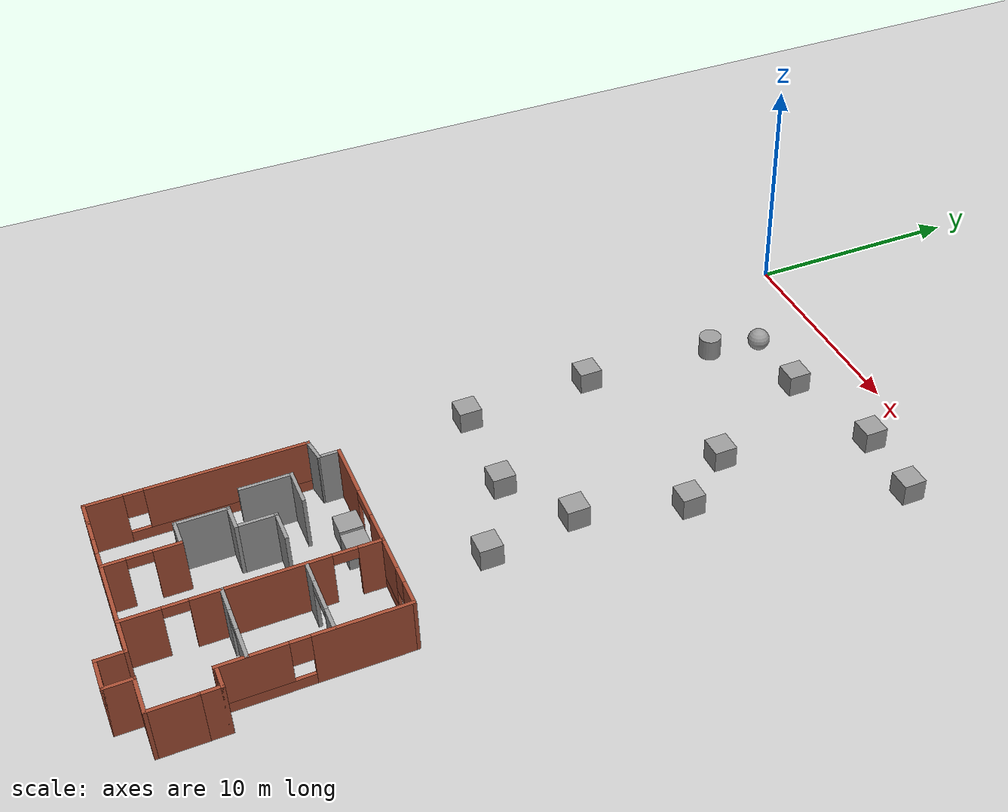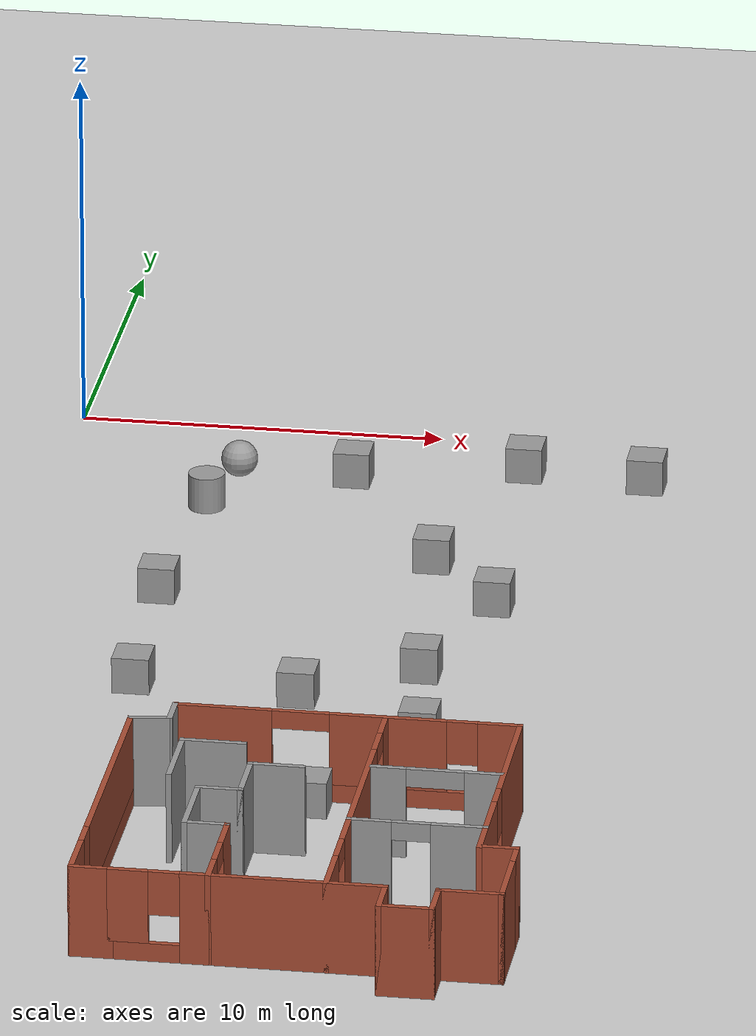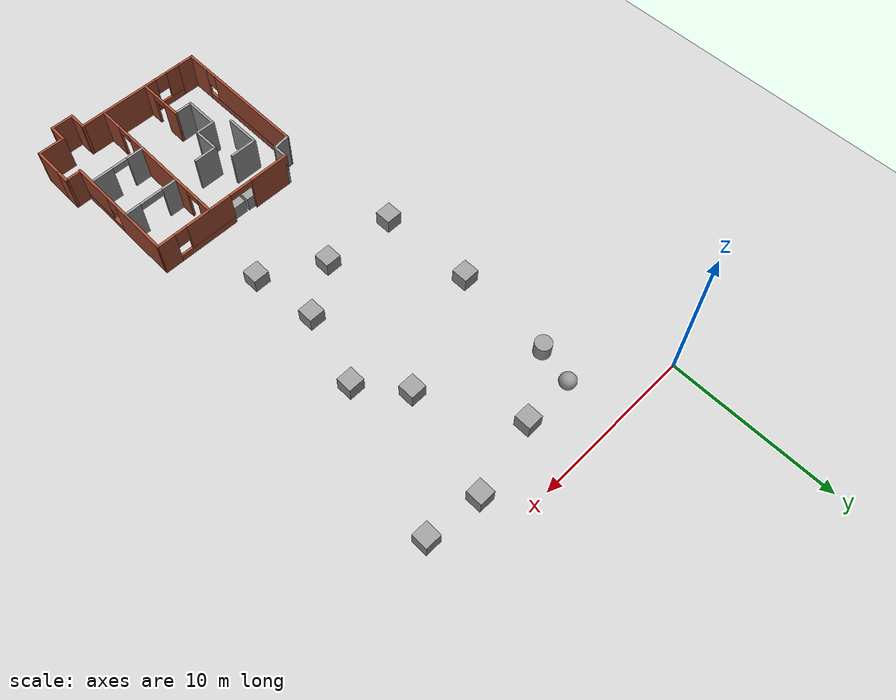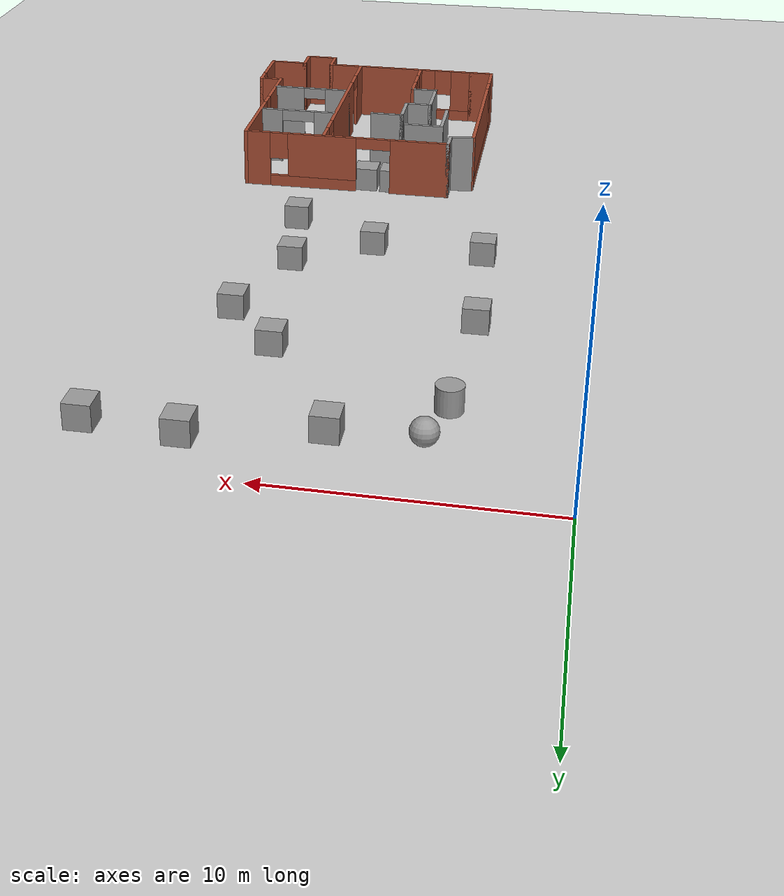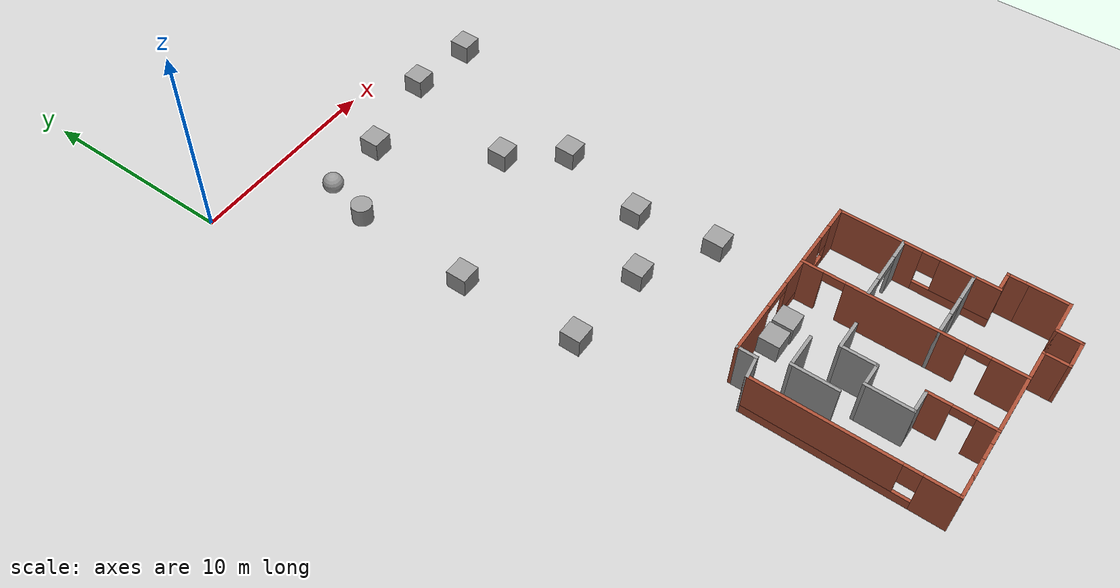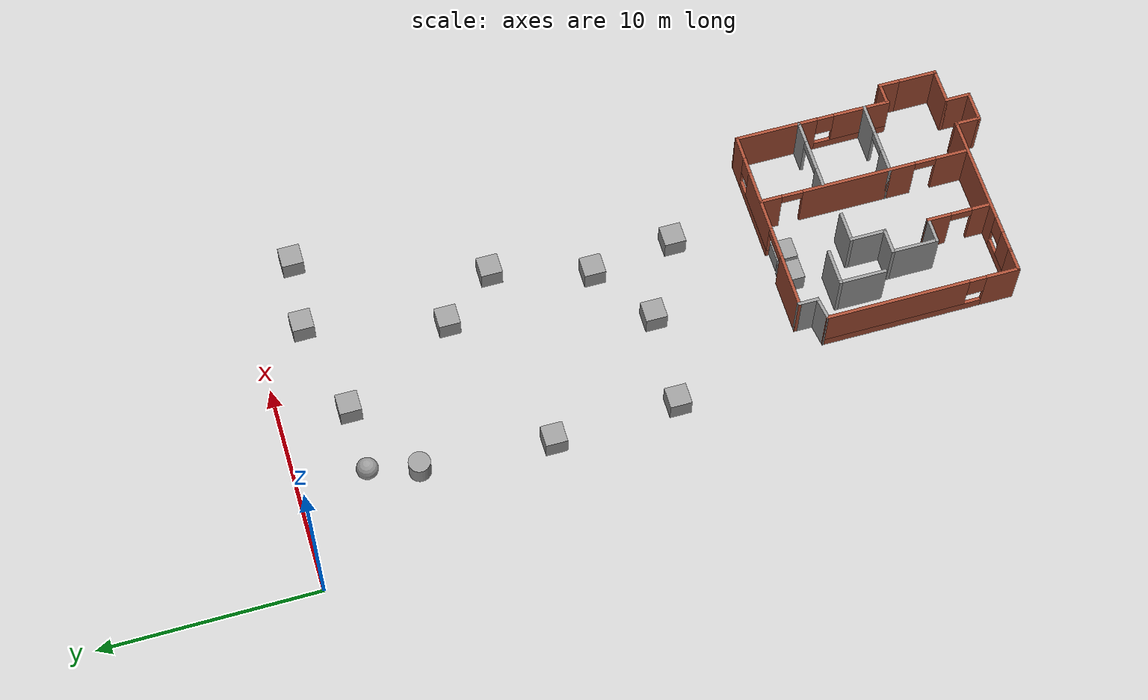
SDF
<sdf version="1.6">
 <world name="default">
  <model name="ground_plane">
   <static>1</static>
   <link name="link">
    <collision name="collision">
     <geometry><plane><normal>0 0 1</normal><size>100 100</size></plane></geometry>
     <surface><friction><ode><mu>100</mu><mu2>50</mu2></ode></friction></surface>
    </collision>
    <visual name="visual">
     <cast_shadows>0</cast_shadows>
     <geometry><plane><normal>0 0 1</normal><size>100 100</size></plane></geometry>
     <material>
      <script><uri>file://media/materials/scripts/gazebo.material</uri><name>Gazebo/Grey</name></script>
     </material>
    </visual>
   </link>
  </model>
  <model name="Multi_10home2_0">
   <pose>10.9036 -29.1028 0 0 -0 3.13963</pose>
   <link name="Wall_1">
    <pose>-0.030148 -5.55 0 0 -0 0</pose>
    <visual name="Wall_1_Visual_0">
     <pose>-3.9871 0 1.25 0 -0 0</pose>
     <geometry><box><size>1.1758 0.15 2.5</size></box></geometry>
     <material>
      <script><uri>file://media/materials/scripts/gazebo.material</uri><name>Gazebo/Bricks</name></script>
      <ambient>0.996078 0.47451 0.0196078 1</ambient>
     </material>
     <meta><layer>0</layer></meta>
    </visual>
    <collision name="Wall_1_Collision_0">
     <geometry><box><size>1.1758 0.15 2.5</size></box></geometry>
     <pose>-3.9871 0 1.25 0 -0 0</pose>
    </collision>
    <visual name="Wall_1_Visual_1">
     <pose>3.26904 0 1.25 0 -0 0</pose>
     <geometry><box><size>2.61193 0.15 2.5</size></box></geometry>
     <material>
      <script><uri>file://media/materials/scripts/gazebo.material</uri><name>Gazebo/Bricks</name></script>
      <ambient>0.996078 0.47451 0.0196078 1</ambient>
     </material>
     <meta><layer>0</layer></meta>
    </visual>
    <collision name="Wall_1_Collision_1">
     <geometry><box><size>2.61193 0.15 2.5</size></box></geometry>
     <pose>3.26904 0 1.25 0 -0 0</pose>
    </collision>
    <visual name="Wall_1_Visual_2">
     <pose>-1.46806 0 0.25 0 -0 0</pose>
     <geometry><box><size>3.86227 0.15 0.5</size></box></geometry>
     <material>
      <script><uri>file://media/materials/scripts/gazebo.material</uri><name>Gazebo/Bricks</name></script>
      <ambient>0.996078 0.47451 0.0196078 1</ambient>
     </material>
     <meta><layer>0</layer></meta>
    </visual>
    <collision name="Wall_1_Collision_2">
     <geometry><box><size>3.86227 0.15 0.5</size></box></geometry>
     <pose>-1.46806 0 0.25 0 -0 0</pose>
    </collision>
    <visual name="Wall_1_Visual_3">
     <pose>-1.06806 0 1.5 0 -0 0</pose>
     <geometry><box><size>3.06227 0.15 2</size></box></geometry>
     <material>
      <script><uri>file://media/materials/scripts/gazebo.material</uri><name>Gazebo/Bricks</name></script>
      <ambient>0.996078 0.47451 0.0196078 1</ambient>
     </material>
     <meta><layer>0</layer></meta>
    </visual>
    <collision name="Wall_1_Collision_3">
     <geometry><box><size>3.06227 0.15 2</size></box></geometry>
     <pose>-1.06806 0 1.5 0 -0 0</pose>
    </collision>
    <visual name="Wall_1_Visual_4">
     <pose>-2.9992 0 1.9 0 -0 0</pose>
     <geometry><box><size>0.8 0.15 1.2</size></box></geometry>
     <material>
      <script><uri>file://media/materials/scripts/gazebo.material</uri><name>Gazebo/Bricks</name></script>
      <ambient>0.996078 0.47451 0.0196078 1</ambient>
     </material>
     <meta><layer>0</layer></meta>
    </visual>
    <collision name="Wall_1_Collision_4">
     <geometry><box><size>0.8 0.15 1.2</size></box></geometry>
     <pose>-2.9992 0 1.9 0 -0 0</pose>
    </collision>
    <visual name="Wall_1_Visual_5">
     <pose>1.21307 0 2.25 0 -0 0</pose>
     <geometry><box><size>1.5 0.15 0.5</size></box></geometry>
     <material>
      <script><uri>file://media/materials/scripts/gazebo.material</uri><name>Gazebo/Bricks</name></script>
      <ambient>0.996078 0.47451 0.0196078 1</ambient>
     </material>
     <meta><layer>0</layer></meta>
    </visual>
    <collision name="Wall_1_Collision_5">
     <geometry><box><size>1.5 0.15 0.5</size></box></geometry>
     <pose>1.21307 0 2.25 0 -0 0</pose>
    </collision>
   </link>
   <link name="Wall_13">
    <collision name="Wall_13_Collision">
     <geometry><box><size>1.15 0.15 2.5</size></box></geometry>
     <pose>0 0 1.25 0 -0 0</pose>
    </collision>
    <visual name="Wall_13_Visual">
     <pose>0 0 1.25 0 -0 0</pose>
     <geometry><box><size>1.15 0.15 2.5</size></box></geometry>
     <material>
      <script><uri>file://media/materials/scripts/gazebo.material</uri><name>Gazebo/Bricks</name></script>
      <ambient>0.996078 0.47451 0.0196078 1</ambient>
     </material>
     <meta><layer>0</layer></meta>
    </visual>
    <pose>4.96985 4.45 0 0 -0 0</pose>
   </link>
   <link name="Wall_15">
    <pose>5.46985 -0.05 0 0 -0 -1.5708</pose>
    <visual name="Wall_15_Visual_0">
     <pose>-3.77551 0 1.25 0 -0 0</pose>
     <geometry><box><size>1.59899 0.15 2.5</size></box></geometry>
     <material>
      <script><uri>file://media/materials/scripts/gazebo.material</uri><name>Gazebo/Bricks</name></script>
      <ambient>0.996078 0.47451 0.0196078 1</ambient>
     </material>
     <meta><layer>0</layer></meta>
    </visual>
    <collision name="Wall_15_Collision_0">
     <geometry><box><size>1.59899 0.15 2.5</size></box></geometry>
     <pose>-3.77551 0 1.25 0 -0 0</pose>
    </collision>
    <visual name="Wall_15_Visual_1">
     <pose>0.799494 0 0.25 0 -0 0</pose>
     <geometry><box><size>7.55101 0.15 0.5</size></box></geometry>
     <material>
      <script><uri>file://media/materials/scripts/gazebo.material</uri><name>Gazebo/Bricks</name></script>
      <ambient>0.996078 0.47451 0.0196078 1</ambient>
     </material>
     <meta><layer>0</layer></meta>
    </visual>
    <collision name="Wall_15_Collision_1">
     <geometry><box><size>7.55101 0.15 0.5</size></box></geometry>
     <pose>0.799494 0 0.25 0 -0 0</pose>
    </collision>
    <visual name="Wall_15_Visual_2">
     <pose>1.19949 0 1.5 0 -0 0</pose>
     <geometry><box><size>6.75101 0.15 2</size></box></geometry>
     <material>
      <script><uri>file://media/materials/scripts/gazebo.material</uri><name>Gazebo/Bricks</name></script>
      <ambient>0.996078 0.47451 0.0196078 1</ambient>
     </material>
     <meta><layer>0</layer></meta>
    </visual>
    <collision name="Wall_15_Collision_2">
     <geometry><box><size>6.75101 0.15 2</size></box></geometry>
     <pose>1.19949 0 1.5 0 -0 0</pose>
    </collision>
    <visual name="Wall_15_Visual_3">
     <pose>-2.57601 0 1.9 0 -0 0</pose>
     <geometry><box><size>0.8 0.15 1.2</size></box></geometry>
     <material>
      <script><uri>file://media/materials/scripts/gazebo.material</uri><name>Gazebo/Bricks</name></script>
      <ambient>0.996078 0.47451 0.0196078 1</ambient>
     </material>
     <meta><layer>0</layer></meta>
    </visual>
    <collision name="Wall_15_Collision_3">
     <geometry><box><size>0.8 0.15 1.2</size></box></geometry>
     <pose>-2.57601 0 1.9 0 -0 0</pose>
    </collision>
   </link>
   <link name="Wall_17">
    <pose>-1.03015 -0.55 0 0 -0 -1.5708</pose>
    <visual name="Wall_17_Visual_0">
     <pose>-4.25111 0 1.25 0 -0 0</pose>
     <geometry><box><size>1.64778 0.15 2.5</size></box></geometry>
     <material>
      <script><uri>file://media/materials/scripts/gazebo.material</uri><name>Gazebo/Bricks</name></script>
      <ambient>1 0.764706 0.305882 1</ambient>
     </material>
     <meta><layer>0</layer></meta>
    </visual>
    <collision name="Wall_17_Collision_0">
     <geometry><box><size>1.64778 0.15 2.5</size></box></geometry>
     <pose>-4.25111 0 1.25 0 -0 0</pose>
    </collision>
    <visual name="Wall_17_Visual_1">
     <pose>0.285375 0 1.25 0 -0 0</pose>
     <geometry><box><size>5.42519 0.15 2.5</size></box></geometry>
     <material>
      <script><uri>file://media/materials/scripts/gazebo.material</uri><name>Gazebo/Bricks</name></script>
      <ambient>1 0.764706 0.305882 1</ambient>
     </material>
     <meta><layer>0</layer></meta>
    </visual>
    <collision name="Wall_17_Collision_1">
     <geometry><box><size>5.42519 0.15 2.5</size></box></geometry>
     <pose>0.285375 0 1.25 0 -0 0</pose>
    </collision>
    <visual name="Wall_17_Visual_2">
     <pose>4.53648 0 1.25 0 -0 0</pose>
     <geometry><box><size>1.07703 0.15 2.5</size></box></geometry>
     <material>
      <script><uri>file://media/materials/scripts/gazebo.material</uri><name>Gazebo/Bricks</name></script>
      <ambient>1 0.764706 0.305882 1</ambient>
     </material>
     <meta><layer>0</layer></meta>
    </visual>
    <collision name="Wall_17_Collision_2">
     <geometry><box><size>1.07703 0.15 2.5</size></box></geometry>
     <pose>4.53648 0 1.25 0 -0 0</pose>
    </collision>
    <visual name="Wall_17_Visual_3">
     <pose>-2.92722 0 2.25 0 -0 0</pose>
     <geometry><box><size>1 0.15 0.5</size></box></geometry>
     <material>
      <script><uri>file://media/materials/scripts/gazebo.material</uri><name>Gazebo/Bricks</name></script>
      <ambient>1 0.764706 0.305882 1</ambient>
     </material>
     <meta><layer>0</layer></meta>
    </visual>
    <collision name="Wall_17_Collision_3">
     <geometry><box><size>1 0.15 0.5</size></box></geometry>
     <pose>-2.92722 0 2.25 0 -0 0</pose>
    </collision>
    <visual name="Wall_17_Visual_4">
     <pose>3.49797 0 2.25 0 -0 0</pose>
     <geometry><box><size>1 0.15 0.5</size></box></geometry>
     <material>
      <script><uri>file://media/materials/scripts/gazebo.material</uri><name>Gazebo/Bricks</name></script>
      <ambient>1 0.764706 0.305882 1</ambient>
     </material>
     <meta><layer>0</layer></meta>
    </visual>
    <collision name="Wall_17_Collision_4">
     <geometry><box><size>1 0.15 0.5</size></box></geometry>
     <pose>3.49797 0 2.25 0 -0 0</pose>
    </collision>
   </link>
   <link name="Wall_21">
    <pose>1.96985 2.95 0 0 -0 -1.5708</pose>
    <visual name="Wall_21_Visual_0">
     <pose>-1.07884 0 1.25 0 -0 0</pose>
     <geometry><box><size>0.992321 0.15 2.5</size></box></geometry>
     <material>
      <script><uri>file://media/materials/scripts/gazebo.material</uri><name>Gazebo/Bricks</name></script>
      <ambient>1 0.764706 0.305882 1</ambient>
     </material>
     <meta><layer>0</layer></meta>
    </visual>
    <collision name="Wall_21_Collision_0">
     <geometry><box><size>0.992321 0.15 2.5</size></box></geometry>
     <pose>-1.07884 0 1.25 0 -0 0</pose>
    </collision>
    <visual name="Wall_21_Visual_1">
     <pose>0.99616 0 1.25 0 -0 0</pose>
     <geometry><box><size>1.15768 0.15 2.5</size></box></geometry>
     <material>
      <script><uri>file://media/materials/scripts/gazebo.material</uri><name>Gazebo/Bricks</name></script>
      <ambient>1 0.764706 0.305882 1</ambient>
     </material>
     <meta><layer>0</layer></meta>
    </visual>
    <collision name="Wall_21_Collision_1">
     <geometry><box><size>1.15768 0.15 2.5</size></box></geometry>
     <pose>0.99616 0 1.25 0 -0 0</pose>
    </collision>
    <visual name="Wall_21_Visual_2">
     <pose>-0.082679 0 2.25 0 -0 0</pose>
     <geometry><box><size>1 0.15 0.5</size></box></geometry>
     <material>
      <script><uri>file://media/materials/scripts/gazebo.material</uri><name>Gazebo/Bricks</name></script>
      <ambient>1 0.764706 0.305882 1</ambient>
     </material>
     <meta><layer>0</layer></meta>
    </visual>
    <collision name="Wall_21_Collision_2">
     <geometry><box><size>1 0.15 0.5</size></box></geometry>
     <pose>-0.082679 0 2.25 0 -0 0</pose>
    </collision>
   </link>
   <link name="Wall_23">
    <pose>-2.78015 0.65 0 0 -0 0</pose>
    <visual name="Wall_23_Visual_0">
     <pose>-1.08466 0 1.25 0 -0 0</pose>
     <geometry><box><size>1.48067 0.15 2.5</size></box></geometry>
     <material>
      <script><uri>file://media/materials/scripts/gazebo.material</uri><name>Gazebo/Grey</name></script>
      <ambient>1 1 1 1</ambient>
     </material>
     <meta><layer>0</layer></meta>
    </visual>
    <collision name="Wall_23_Collision_0">
     <geometry><box><size>1.48067 0.15 2.5</size></box></geometry>
     <pose>-1.08466 0 1.25 0 -0 0</pose>
    </collision>
    <visual name="Wall_23_Visual_1">
     <pose>1.24034 0 1.25 0 -0 0</pose>
     <geometry><box><size>1.16933 0.15 2.5</size></box></geometry>
     <material>
      <script><uri>file://media/materials/scripts/gazebo.material</uri><name>Gazebo/Grey</name></script>
      <ambient>1 1 1 1</ambient>
     </material>
     <meta><layer>0</layer></meta>
    </visual>
    <collision name="Wall_23_Collision_1">
     <geometry><box><size>1.16933 0.15 2.5</size></box></geometry>
     <pose>1.24034 0 1.25 0 -0 0</pose>
    </collision>
    <visual name="Wall_23_Visual_2">
     <pose>0.155673 0 2.25 0 -0 0</pose>
     <geometry><box><size>1 0.15 0.5</size></box></geometry>
     <material>
      <script><uri>file://media/materials/scripts/gazebo.material</uri><name>Gazebo/Grey</name></script>
      <ambient>1 1 1 1</ambient>
     </material>
     <meta><layer>0</layer></meta>
    </visual>
    <collision name="Wall_23_Collision_2">
     <geometry><box><size>1 0.15 0.5</size></box></geometry>
     <pose>0.155673 0 2.25 0 -0 0</pose>
    </collision>
   </link>
   <link name="Wall_25">
    <pose>-2.81697 -2.5468 0 0 -0 0</pose>
    <visual name="Wall_25_Visual_0">
     <pose>-1.22693 0 1.25 0 -0 0</pose>
     <geometry><box><size>1.04615 0.15 2.5</size></box></geometry>
     <material>
      <script><uri>file://media/materials/scripts/gazebo.material</uri><name>Gazebo/Grey</name></script>
      <ambient>1 1 1 1</ambient>
     </material>
     <meta><layer>0</layer></meta>
    </visual>
    <collision name="Wall_25_Collision_0">
     <geometry><box><size>1.04615 0.15 2.5</size></box></geometry>
     <pose>-1.22693 0 1.25 0 -0 0</pose>
    </collision>
    <visual name="Wall_25_Visual_1">
     <pose>1.27307 0 1.25 0 -0 0</pose>
     <geometry><box><size>0.953852 0.15 2.5</size></box></geometry>
     <material>
      <script><uri>file://media/materials/scripts/gazebo.material</uri><name>Gazebo/Grey</name></script>
      <ambient>1 1 1 1</ambient>
     </material>
     <meta><layer>0</layer></meta>
    </visual>
    <collision name="Wall_25_Collision_1">
     <geometry><box><size>0.953852 0.15 2.5</size></box></geometry>
     <pose>1.27307 0 1.25 0 -0 0</pose>
    </collision>
    <visual name="Wall_25_Visual_2">
     <pose>0.046148 0 2.25 0 -0 0</pose>
     <geometry><box><size>1.5 0.15 0.5</size></box></geometry>
     <material>
      <script><uri>file://media/materials/scripts/gazebo.material</uri><name>Gazebo/Grey</name></script>
      <ambient>1 1 1 1</ambient>
     </material>
     <meta><layer>0</layer></meta>
    </visual>
    <collision name="Wall_25_Collision_2">
     <geometry><box><size>1.5 0.15 0.5</size></box></geometry>
     <pose>0.046148 0 2.25 0 -0 0</pose>
    </collision>
   </link>
   <link name="Wall_27">
    <collision name="Wall_27_Collision">
     <geometry><box><size>1.25 0.15 2.5</size></box></geometry>
     <pose>0 0 1.25 0 -0 0</pose>
    </collision>
    <visual name="Wall_27_Visual">
     <pose>0 0 1.25 0 -0 0</pose>
     <geometry><box><size>1.25 0.15 2.5</size></box></geometry>
     <material>
      <script><uri>file://media/materials/scripts/gazebo.material</uri><name>Gazebo/Bricks</name></script>
      <ambient>0.996078 0.47451 0.0196078 1</ambient>
     </material>
     <meta><layer>0</layer></meta>
    </visual>
    <pose>-2.53015 5 0 0 -0 1.5708</pose>
   </link>
   <link name="Wall_28">
    <collision name="Wall_28_Collision">
     <geometry><box><size>1.5 0.15 2.5</size></box></geometry>
     <pose>0 0 1.25 0 -0 0</pose>
    </collision>
    <visual name="Wall_28_Visual">
     <pose>0 0 1.25 0 -0 0</pose>
     <geometry><box><size>1.5 0.15 2.5</size></box></geometry>
     <material>
      <script><uri>file://media/materials/scripts/gazebo.material</uri><name>Gazebo/Bricks</name></script>
      <ambient>0.996078 0.47451 0.0196078 1</ambient>
     </material>
     <meta><layer>0</layer></meta>
    </visual>
    <pose>-3.20515 5.55 0 0 -0 3.14159</pose>
   </link>
   <link name="Wall_29">
    <collision name="Wall_29_Collision">
     <geometry><box><size>1.25 0.15 2.5</size></box></geometry>
     <pose>0 0 1.25 0 -0 0</pose>
    </collision>
    <visual name="Wall_29_Visual">
     <pose>0 0 1.25 0 -0 0</pose>
     <geometry><box><size>1.25 0.15 2.5</size></box></geometry>
     <material>
      <script><uri>file://media/materials/scripts/gazebo.material</uri><name>Gazebo/Bricks</name></script>
      <ambient>0.996078 0.47451 0.0196078 1</ambient>
     </material>
     <meta><layer>0</layer></meta>
    </visual>
    <pose>-3.88015 5 0 0 -0 -1.5708</pose>
   </link>
   <link name="Wall_3">
    <pose>-4.53015 -1.875 0 0 -0 1.5708</pose>
    <visual name="Wall_3_Visual_0">
     <pose>-1.77393 0 1.25 0 -0 0</pose>
     <geometry><box><size>3.95214 0.15 2.5</size></box></geometry>
     <material>
      <script><uri>file://media/materials/scripts/gazebo.material</uri><name>Gazebo/Bricks</name></script>
      <ambient>0.996078 0.47451 0.0196078 1</ambient>
     </material>
     <meta><layer>0</layer></meta>
    </visual>
    <collision name="Wall_3_Collision_0">
     <geometry><box><size>3.95214 0.15 2.5</size></box></geometry>
     <pose>-1.77393 0 1.25 0 -0 0</pose>
    </collision>
    <visual name="Wall_3_Visual_1">
     <pose>1.97607 0 0.25 0 -0 0</pose>
     <geometry><box><size>3.54786 0.15 0.5</size></box></geometry>
     <material>
      <script><uri>file://media/materials/scripts/gazebo.material</uri><name>Gazebo/Bricks</name></script>
      <ambient>0.996078 0.47451 0.0196078 1</ambient>
     </material>
     <meta><layer>0</layer></meta>
    </visual>
    <collision name="Wall_3_Collision_1">
     <geometry><box><size>3.54786 0.15 0.5</size></box></geometry>
     <pose>1.97607 0 0.25 0 -0 0</pose>
    </collision>
    <visual name="Wall_3_Visual_2">
     <pose>2.37607 0 1.5 0 -0 0</pose>
     <geometry><box><size>2.74786 0.15 2</size></box></geometry>
     <material>
      <script><uri>file://media/materials/scripts/gazebo.material</uri><name>Gazebo/Bricks</name></script>
      <ambient>0.996078 0.47451 0.0196078 1</ambient>
     </material>
     <meta><layer>0</layer></meta>
    </visual>
    <collision name="Wall_3_Collision_2">
     <geometry><box><size>2.74786 0.15 2</size></box></geometry>
     <pose>2.37607 0 1.5 0 -0 0</pose>
    </collision>
    <visual name="Wall_3_Visual_3">
     <pose>0.602144 0 1.9 0 -0 0</pose>
     <geometry><box><size>0.8 0.15 1.2</size></box></geometry>
     <material>
      <script><uri>file://media/materials/scripts/gazebo.material</uri><name>Gazebo/Bricks</name></script>
      <ambient>0.996078 0.47451 0.0196078 1</ambient>
     </material>
     <meta><layer>0</layer></meta>
    </visual>
    <collision name="Wall_3_Collision_3">
     <geometry><box><size>0.8 0.15 1.2</size></box></geometry>
     <pose>0.602144 0 1.9 0 -0 0</pose>
    </collision>
   </link>
   <link name="Wall_30">
    <collision name="Wall_30_Collision">
     <geometry><box><size>1.75 0.15 2.5</size></box></geometry>
     <pose>0 0 1.25 0 -0 0</pose>
    </collision>
    <visual name="Wall_30_Visual">
     <pose>0 0 1.25 0 -0 0</pose>
     <geometry><box><size>1.75 0.15 2.5</size></box></geometry>
     <material>
      <script><uri>file://media/materials/scripts/gazebo.material</uri><name>Gazebo/Bricks</name></script>
      <ambient>0.996078 0.47451 0.0196078 1</ambient>
     </material>
     <meta><layer>0</layer></meta>
    </visual>
    <pose>-4.68015 4.45 0 0 -0 3.14159</pose>
   </link>
   <link name="Wall_31">
    <collision name="Wall_31_Collision">
     <geometry><box><size>2 0.15 2.5</size></box></geometry>
     <pose>0 0 1.25 0 -0 0</pose>
    </collision>
    <visual name="Wall_31_Visual">
     <pose>0 0 1.25 0 -0 0</pose>
     <geometry><box><size>2 0.15 2.5</size></box></geometry>
     <material>
      <script><uri>file://media/materials/scripts/gazebo.material</uri><name>Gazebo/Bricks</name></script>
      <ambient>0.996078 0.47451 0.0196078 1</ambient>
     </material>
     <meta><layer>0</layer></meta>
    </visual>
    <pose>-5.48015 3.525 0 0 -0 -1.5708</pose>
   </link>
   <link name="Wall_32">
    <collision name="Wall_32_Collision">
     <geometry><box><size>1 0.15 2.5</size></box></geometry>
     <pose>0 0 1.25 0 -0 0</pose>
    </collision>
    <visual name="Wall_32_Visual">
     <pose>0 0 1.25 0 -0 0</pose>
     <geometry><box><size>1 0.15 2.5</size></box></geometry>
     <material>
      <script><uri>file://media/materials/scripts/gazebo.material</uri><name>Gazebo/Bricks</name></script>
      <ambient>0.996078 0.47451 0.0196078 1</ambient>
     </material>
     <meta><layer>0</layer></meta>
    </visual>
    <pose>-5.48015 2.175 0 0 -0 -1.5708</pose>
   </link>
   <link name="Wall_33">
    <collision name="Wall_33_Collision">
     <geometry><box><size>1 0.15 2.5</size></box></geometry>
     <pose>0 0 1.25 0 -0 0</pose>
    </collision>
    <visual name="Wall_33_Visual">
     <pose>0 0 1.25 0 -0 0</pose>
     <geometry><box><size>1 0.15 2.5</size></box></geometry>
     <material>
      <script><uri>file://media/materials/scripts/gazebo.material</uri><name>Gazebo/Bricks</name></script>
      <ambient>0.996078 0.47451 0.0196078 1</ambient>
     </material>
     <meta><layer>0</layer></meta>
    </visual>
    <pose>-5.05515 1.75 0 0 -0 0</pose>
   </link>
   <link name="Wall_35">
    <collision name="Wall_35_Collision">
     <geometry><box><size>1.25 0.15 2.5</size></box></geometry>
     <pose>0 0 1.25 0 -0 0</pose>
    </collision>
    <visual name="Wall_35_Visual">
     <pose>0 0 1.25 0 -0 0</pose>
     <geometry><box><size>1.25 0.15 2.5</size></box></geometry>
     <material>
      <script><uri>file://media/materials/scripts/gazebo.material</uri><name>Gazebo/Grey</name></script>
      <ambient>1 1 1 1</ambient>
     </material>
     <meta><layer>0</layer></meta>
    </visual>
    <pose>2.51985 1.45 0 0 -0 0</pose>
   </link>
   <link name="Wall_36">
    <collision name="Wall_36_Collision">
     <geometry><box><size>2.25 0.15 2.5</size></box></geometry>
     <pose>0 0 1.25 0 -0 0</pose>
    </collision>
    <visual name="Wall_36_Visual">
     <pose>0 0 1.25 0 -0 0</pose>
     <geometry><box><size>2.25 0.15 2.5</size></box></geometry>
     <material>
      <script><uri>file://media/materials/scripts/gazebo.material</uri><name>Gazebo/Grey</name></script>
      <ambient>1 1 1 1</ambient>
     </material>
     <meta><layer>0</layer></meta>
    </visual>
    <pose>3.06985 0.4 0 0 -0 -1.5708</pose>
   </link>
   <link name="Wall_37">
    <collision name="Wall_37_Collision">
     <geometry><box><size>1.25 0.15 2.5</size></box></geometry>
     <pose>0 0 1.25 0 -0 0</pose>
    </collision>
    <visual name="Wall_37_Visual">
     <pose>0 0 1.25 0 -0 0</pose>
     <geometry><box><size>1.25 0.15 2.5</size></box></geometry>
     <material>
      <script><uri>file://media/materials/scripts/gazebo.material</uri><name>Gazebo/Grey</name></script>
      <ambient>1 1 1 1</ambient>
     </material>
     <meta><layer>0</layer></meta>
    </visual>
    <pose>2.51985 -0.65 0 0 -0 3.14159</pose>
   </link>
   <link name="Wall_38">
    <collision name="Wall_38_Collision">
     <geometry><box><size>1.75 0.15 2.5</size></box></geometry>
     <pose>0 0 1.25 0 -0 0</pose>
    </collision>
    <visual name="Wall_38_Visual">
     <pose>0 0 1.25 0 -0 0</pose>
     <geometry><box><size>1.75 0.15 2.5</size></box></geometry>
     <material>
      <script><uri>file://media/materials/scripts/gazebo.material</uri><name>Gazebo/Grey</name></script>
      <ambient>1 1 1 1</ambient>
     </material>
     <meta><layer>0</layer></meta>
    </visual>
    <pose>1.96985 -1.45 0 0 -0 -1.5708</pose>
   </link>
   <link name="Wall_39">
    <collision name="Wall_39_Collision">
     <geometry><box><size>1.5 0.15 2.5</size></box></geometry>
     <pose>0 0 1.25 0 -0 0</pose>
    </collision>
    <visual name="Wall_39_Visual">
     <pose>0 0 1.25 0 -0 0</pose>
     <geometry><box><size>1.5 0.15 2.5</size></box></geometry>
     <material>
      <script><uri>file://media/materials/scripts/gazebo.material</uri><name>Gazebo/Grey</name></script>
      <ambient>1 1 1 1</ambient>
     </material>
     <meta><layer>0</layer></meta>
    </visual>
    <pose>1.29485 -2.25 0 0 -0 3.14159</pose>
   </link>
   <link name="Wall_41">
    <collision name="Wall_41_Collision">
     <geometry><box><size>2.25 0.15 2.5</size></box></geometry>
     <pose>0 0 1.25 0 -0 0</pose>
    </collision>
    <visual name="Wall_41_Visual">
     <pose>0 0 1.25 0 -0 0</pose>
     <geometry><box><size>2.25 0.15 2.5</size></box></geometry>
     <material>
      <script><uri>file://media/materials/scripts/gazebo.material</uri><name>Gazebo/Grey</name></script>
      <ambient>1 1 1 1</ambient>
     </material>
     <meta><layer>0</layer></meta>
    </visual>
    <pose>3.92844 -2.37544 0 0 -0 -1.5708</pose>
   </link>
   <link name="Wall_42">
    <collision name="Wall_42_Collision">
     <geometry><box><size>1.75 0.15 2.5</size></box></geometry>
     <pose>0 0 1.25 0 -0 0</pose>
    </collision>
    <visual name="Wall_42_Visual">
     <pose>0 0 1.25 0 -0 0</pose>
     <geometry><box><size>1.75 0.15 2.5</size></box></geometry>
     <material>
      <script><uri>file://media/materials/scripts/gazebo.material</uri><name>Gazebo/Grey</name></script>
      <ambient>1 1 1 1</ambient>
     </material>
     <meta><layer>0</layer></meta>
    </visual>
    <pose>3.12844 -3.42544 0 0 -0 3.14159</pose>
   </link>
   <link name="Wall_45">
    <collision name="Wall_45_Collision">
     <geometry><box><size>1 0.15 2.5</size></box></geometry>
     <pose>0 0 1.25 0 -0 0</pose>
    </collision>
    <visual name="Wall_45_Visual">
     <pose>0 0 1.25 0 -0 0</pose>
     <geometry><box><size>1 0.15 2.5</size></box></geometry>
     <material>
      <script><uri>file://media/materials/scripts/gazebo.material</uri><name>Gazebo/Grey</name></script>
      <ambient>1 1 1 1</ambient>
     </material>
     <meta><layer>0</layer></meta>
    </visual>
    <pose>4.46985 -5.125 0 0 -0 1.5708</pose>
   </link>
   <link name="Wall_47">
    <collision name="Wall_47_Collision">
     <geometry><box><size>1.16119 0.15 2.5</size></box></geometry>
     <pose>0 0 1.25 0 -0 0</pose>
    </collision>
    <visual name="Wall_47_Visual">
     <pose>0 0 1.25 0 -0 0</pose>
     <geometry><box><size>1.16119 0.15 2.5</size></box></geometry>
     <material>
      <script><uri>file://media/materials/scripts/gazebo.material</uri><name>Gazebo/Grey</name></script>
      <ambient>1 1 1 1</ambient>
     </material>
     <meta><layer>0</layer></meta>
    </visual>
    <pose>4.96985 -4.625 0 0 -0 -2.9927</pose>
   </link>
   <link name="Wall_9">
    <pose>0.969852 4.45 0 0 -0 0</pose>
    <visual name="Wall_9_Visual_0">
     <pose>-0.925142 0 1.25 0 -0 0</pose>
     <geometry><box><size>5.29972 0.15 2.5</size></box></geometry>
     <material>
      <script><uri>file://media/materials/scripts/gazebo.material</uri><name>Gazebo/Bricks</name></script>
      <ambient>0.996078 0.47451 0.0196078 1</ambient>
     </material>
     <meta><layer>0</layer></meta>
    </visual>
    <collision name="Wall_9_Collision_0">
     <geometry><box><size>5.29972 0.15 2.5</size></box></geometry>
     <pose>-0.925142 0 1.25 0 -0 0</pose>
    </collision>
    <visual name="Wall_9_Visual_1">
     <pose>2.64986 0 0.25 0 -0 0</pose>
     <geometry><box><size>1.85028 0.15 0.5</size></box></geometry>
     <material>
      <script><uri>file://media/materials/scripts/gazebo.material</uri><name>Gazebo/Bricks</name></script>
      <ambient>0.996078 0.47451 0.0196078 1</ambient>
     </material>
     <meta><layer>0</layer></meta>
    </visual>
    <collision name="Wall_9_Collision_1">
     <geometry><box><size>1.85028 0.15 0.5</size></box></geometry>
     <pose>2.64986 0 0.25 0 -0 0</pose>
    </collision>
    <visual name="Wall_9_Visual_2">
     <pose>3.04986 0 1.5 0 -0 0</pose>
     <geometry><box><size>1.05028 0.15 2</size></box></geometry>
     <material>
      <script><uri>file://media/materials/scripts/gazebo.material</uri><name>Gazebo/Bricks</name></script>
      <ambient>0.996078 0.47451 0.0196078 1</ambient>
     </material>
     <meta><layer>0</layer></meta>
    </visual>
    <collision name="Wall_9_Collision_2">
     <geometry><box><size>1.05028 0.15 2</size></box></geometry>
     <pose>3.04986 0 1.5 0 -0 0</pose>
    </collision>
    <visual name="Wall_9_Visual_3">
     <pose>2.12472 0 1.9 0 -0 0</pose>
     <geometry><box><size>0.8 0.15 1.2</size></box></geometry>
     <material>
      <script><uri>file://media/materials/scripts/gazebo.material</uri><name>Gazebo/Bricks</name></script>
      <ambient>0.996078 0.47451 0.0196078 1</ambient>
     </material>
     <meta><layer>0</layer></meta>
    </visual>
    <collision name="Wall_9_Collision_3">
     <geometry><box><size>0.8 0.15 1.2</size></box></geometry>
     <pose>2.12472 0 1.9 0 -0 0</pose>
    </collision>
   </link>
   <static>1</static>
  </model>
  <model name="unit_cylinder">
   <pose>4.32247 -5.43382 0.499994 -4e-06 -3e-06 -0</pose>
   <link name="link">
    <inertial>
     <mass>1</mass>
     <inertia><ixx>0.145833</ixx><ixy>0</ixy><ixz>0</ixz><iyy>0.145833</iyy><iyz>0</iyz><izz>0.125</izz></inertia>
    </inertial>
    <collision name="collision">
     <geometry><cylinder><radius>0.5</radius><length>1</length></cylinder></geometry>
    </collision>
    <visual name="visual">
     <geometry><cylinder><radius>0.5</radius><length>1</length></cylinder></geometry>
     <material>
      <script><name>Gazebo/Grey</name><uri>file://media/materials/scripts/gazebo.material</uri></script>
     </material>
    </visual>
   </link>
  </model>
  <model name="unit_box_0">
   <pose>12.6196 -2.11449 0.499995 1e-05 -0 0</pose>
   <link name="link">
    <inertial>
     <mass>1</mass>
     <inertia>
      <ixx>0.166667</ixx>
      <ixy>0</ixy>
      <ixz>0</ixz>
      <iyy>0.166667</iyy>
      <iyz>0</iyz>
      <izz>0.166667</izz>
     </inertia>
    </inertial>
    <collision name="collision"><geometry><box><size>1 1 1</size></box></geometry></collision>
    <visual name="visual">
     <geometry><box><size>1 1 1</size></box></geometry>
     <material>
      <script><name>Gazebo/Grey</name><uri>file://media/materials/scripts/gazebo.material</uri></script>
     </material>
    </visual>
   </link>
  </model>
  <model name="unit_box_11">
   <pose>11 -8.48179 0.499995 1e-05 -0 -5e-06</pose>
   <link name="link">
    <inertial>
     <mass>1</mass>
     <inertia>
      <ixx>0.166667</ixx>
      <ixy>0</ixy>
      <ixz>0</ixz>
      <iyy>0.166667</iyy>
      <iyz>0</iyz>
      <izz>0.166667</izz>
     </inertia>
    </inertial>
    <collision name="collision"><geometry><box><size>1 1 1</size></box></geometry></collision>
    <visual name="visual">
     <geometry><box><size>1 1 1</size></box></geometry>
     <material>
      <script><name>Gazebo/Grey</name><uri>file://media/materials/scripts/gazebo.material</uri></script>
     </material>
    </visual>
   </link>
  </model>
  <model name="unit_box_12">
   <pose>4 -11.467 0.499995 0 1e-05 5e-06</pose>
   <link name="link">
    <inertial>
     <mass>1</mass>
     <inertia>
      <ixx>0.166667</ixx>
      <ixy>0</ixy>
      <ixz>0</ixz>
      <iyy>0.166667</iyy>
      <iyz>0</iyz>
      <izz>0.166667</izz>
     </inertia>
    </inertial>
    <collision name="collision"><geometry><box><size>1 1 1</size></box></geometry></collision>
    <visual name="visual">
     <geometry><box><size>1 1 1</size></box></geometry>
     <material>
      <script><name>Gazebo/Grey</name><uri>file://media/materials/scripts/gazebo.material</uri></script>
     </material>
    </visual>
   </link>
  </model>
  <model name="unit_box_18">
   <pose>13 -11 0.499995 0 1e-05 5e-06</pose>
   <link name="link">
    <inertial>
     <mass>1</mass>
     <inertia>
      <ixx>0.166667</ixx>
      <ixy>0</ixy>
      <ixz>0</ixz>
      <iyy>0.166667</iyy>
      <iyz>0</iyz>
      <izz>0.166667</izz>
     </inertia>
    </inertial>
    <collision name="collision"><geometry><box><size>1 1 1</size></box></geometry></collision>
    <visual name="visual">
     <geometry><box><size>1 1 1</size></box></geometry>
     <material>
      <script><name>Gazebo/Grey</name><uri>file://media/materials/scripts/gazebo.material</uri></script>
     </material>
    </visual>
   </link>
  </model>
  <model name="unit_box_20">
   <pose>8.01162 -3.14418 0.499995 0 1e-05 5e-06</pose>
   <link name="link">
    <inertial>
     <mass>1</mass>
     <inertia>
      <ixx>0.166667</ixx>
      <ixy>0</ixy>
      <ixz>0</ixz>
      <iyy>0.166667</iyy>
      <iyz>0</iyz>
      <izz>0.166667</izz>
     </inertia>
    </inertial>
    <collision name="collision"><geometry><box><size>1 1 1</size></box></geometry></collision>
    <visual name="visual">
     <geometry><box><size>1 1 1</size></box></geometry>
     <material>
      <script><name>Gazebo/Grey</name><uri>file://media/materials/scripts/gazebo.material</uri></script>
     </material>
    </visual>
   </link>
  </model>
  <model name="unit_sphere">
   <pose>4.87435 -3.1967 0.5 0 -0 0</pose>
   <link name="link">
    <inertial>
     <mass>1</mass>
     <inertia><ixx>0.1</ixx><ixy>0</ixy><ixz>0</ixz><iyy>0.1</iyy><iyz>0</iyz><izz>0.1</izz></inertia>
    </inertial>
    <collision name="collision"><geometry><sphere><radius>0.5</radius></sphere></geometry></collision>
    <visual name="visual">
     <geometry><sphere><radius>0.5</radius></sphere></geometry>
     <material>
      <script><name>Gazebo/Grey</name><uri>file://media/materials/scripts/gazebo.material</uri></script>
     </material>
    </visual>
   </link>
  </model>
  <model name="unit_box_28_clone_53">
   <pose>8.71875 -17.5264 0.5005 -0 -0 -0</pose>
   <link name="link">
    <inertial>
     <mass>1</mass>
     <inertia>
      <ixx>0.166667</ixx>
      <ixy>0</ixy>
      <ixz>0</ixz>
      <iyy>0.166667</iyy>
      <iyz>0</iyz>
      <izz>0.166667</izz>
     </inertia>
    </inertial>
    <collision name="collision"><geometry><box><size>1 1 1</size></box></geometry></collision>
    <visual name="visual">
     <geometry><box><size>1 1 1</size></box></geometry>
     <material>
      <script><name>Gazebo/Grey</name><uri>file://media/materials/scripts/gazebo.material</uri></script>
     </material>
    </visual>
   </link>
  </model>
  <model name="unit_box_28_clone_54">
   <pose>11.6997 -15.5208 0.5005 -0 -0 -0</pose>
   <link name="link">
    <inertial>
     <mass>1</mass>
     <inertia>
      <ixx>0.166667</ixx>
      <ixy>0</ixy>
      <ixz>0</ixz>
      <iyy>0.166667</iyy>
      <iyz>0</iyz>
      <izz>0.166667</izz>
     </inertia>
    </inertial>
    <collision name="collision"><geometry><box><size>1 1 1</size></box></geometry></collision>
    <visual name="visual">
     <geometry><box><size>1 1 1</size></box></geometry>
     <material>
      <script><name>Gazebo/Grey</name><uri>file://media/materials/scripts/gazebo.material</uri></script>
     </material>
    </visual>
   </link>
  </model>
  <model name="unit_box_28_clone_55">
   <pose>12.2423 -19.5048 0.5005 -0 -0 -0</pose>
   <link name="link">
    <inertial>
     <mass>1</mass>
     <inertia>
      <ixx>0.166667</ixx>
      <ixy>0</ixy>
      <ixz>0</ixz>
      <iyy>0.166667</iyy>
      <iyz>0</iyz>
      <izz>0.166667</izz>
     </inertia>
    </inertial>
    <collision name="collision"><geometry><box><size>1 1 1</size></box></geometry></collision>
    <visual name="visual">
     <geometry><box><size>1 1 1</size></box></geometry>
     <material>
      <script><name>Gazebo/Grey</name><uri>file://media/materials/scripts/gazebo.material</uri></script>
     </material>
    </visual>
   </link>
  </model>
  <model name="unit_box_28_clone_57">
   <pose>4.27975 -17.2807 0.5005 -0 -0 -0</pose>
   <link name="link">
    <inertial>
     <mass>1</mass>
     <inertia>
      <ixx>0.166667</ixx>
      <ixy>0</ixy>
      <ixz>0</ixz>
      <iyy>0.166667</iyy>
      <iyz>0</iyz>
      <izz>0.166667</izz>
     </inertia>
    </inertial>
    <collision name="collision"><geometry><box><size>1 1 1</size></box></geometry></collision>
    <visual name="visual">
     <geometry><box><size>1 1 1</size></box></geometry>
     <material>
      <script><name>Gazebo/Grey</name><uri>file://media/materials/scripts/gazebo.material</uri></script>
     </material>
    </visual>
   </link>
  </model>
  <model name="unit_box_28_clone_50_clone_12">
   <pose>15.9921 -2.42597 0.5 0 -0 -0.00164</pose>
   <link name="link">
    <inertial>
     <mass>1</mass>
     <inertia>
      <ixx>0.166667</ixx>
      <ixy>0</ixy>
      <ixz>0</ixz>
      <iyy>0.166667</iyy>
      <iyz>0</iyz>
      <izz>0.166667</izz>
     </inertia>
    </inertial>
    <collision name="collision"><geometry><box><size>1 1 1</size></box></geometry></collision>
    <visual name="visual">
     <geometry><box><size>1 1 1</size></box></geometry>
     <material>
      <script><name>Gazebo/Grey</name><uri>file://media/materials/scripts/gazebo.material</uri></script>
     </material>
    </visual>
   </link>
  </model>
  <model name="unit_box_28_clone_50_clone_17">
   <pose>10.0689 -24.1583 0.5 0 -0 0</pose>
   <link name="link">
    <inertial>
     <mass>1</mass>
     <inertia>
      <ixx>0.166667</ixx>
      <ixy>0</ixy>
      <ixz>0</ixz>
      <iyy>0.166667</iyy>
      <iyz>0</iyz>
      <izz>0.166667</izz>
     </inertia>
    </inertial>
    <collision name="collision"><geometry><box><size>1 1 1</size></box></geometry></collision>
    <visual name="visual">
     <geometry><box><size>1 1 1</size></box></geometry>
     <material>
      <script><name>Gazebo/Grey</name><uri>file://media/materials/scripts/gazebo.material</uri></script>
     </material>
    </visual>
   </link>
  </model>
  <model name="unit_box_28_clone_50_clone_18">
   <pose>8.93809 -24.1241 0.5 0 -0 -0.001963</pose>
   <link name="link">
    <inertial>
     <mass>1</mass>
     <inertia>
      <ixx>0.166667</ixx>
      <ixy>0</ixy>
      <ixz>0</ixz>
      <iyy>0.166667</iyy>
      <iyz>0</iyz>
      <izz>0.166667</izz>
     </inertia>
    </inertial>
    <collision name="collision"><geometry><box><size>1 1 1</size></box></geometry></collision>
    <visual name="visual">
     <geometry><box><size>1 1 1</size></box></geometry>
     <material>
      <script><name>Gazebo/Grey</name><uri>file://media/materials/scripts/gazebo.material</uri></script>
     </material>
    </visual>
   </link>
  </model>
 </world>
</sdf>
